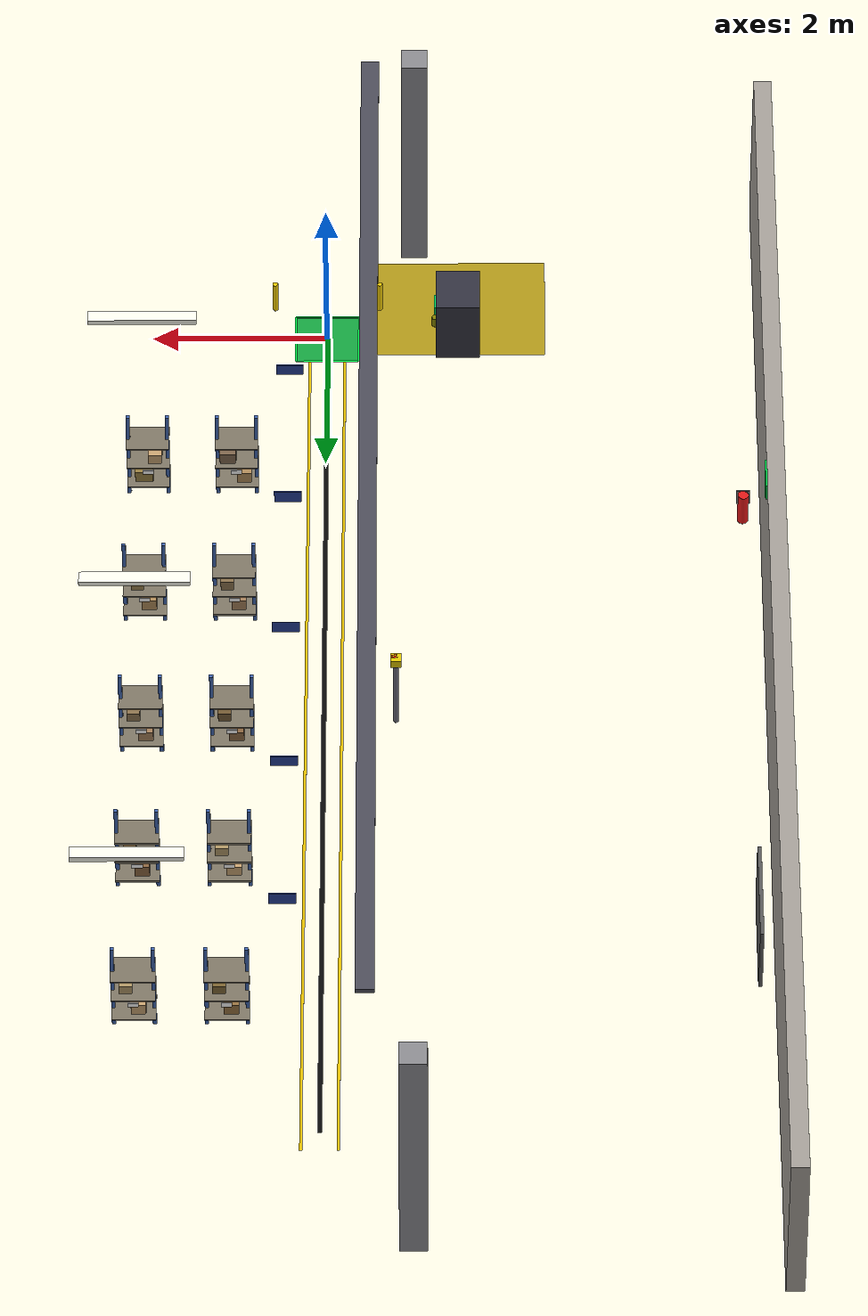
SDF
<sdf version="1.6">
 <world name="atlas_warehouse">
  <model name="lane_spine_L">
   <static>true</static>
   <pose>-0.2 6 0.001 0 0 0</pose>
   <link name="link">
    <visual name="v">
     <geometry><box><size>0.03 12.5 0.001</size></box></geometry>
     <material><ambient>0.85 0.7 0.0 1</ambient><diffuse>0.9 0.75 0.0 1</diffuse></material>
    </visual>
   </link>
  </model>
  <model name="lane_spine_R">
   <static>true</static>
   <pose>0.2 6 0.001 0 0 0</pose>
   <link name="link">
    <visual name="v">
     <geometry><box><size>0.03 12.5 0.001</size></box></geometry>
     <material><ambient>0.85 0.7 0.0 1</ambient><diffuse>0.9 0.75 0.0 1</diffuse></material>
    </visual>
   </link>
  </model>
  <model name="loading_zone">
   <static>true</static>
   <pose>-1.5 -0.5 0.001 0 0 0</pose>
   <link name="link">
    <visual name="v">
     <geometry><box><size>2.0 1.5 0.001</size></box></geometry>
     <material><ambient>0.6 0.55 0.15 1</ambient><diffuse>0.7 0.6 0.1 1</diffuse></material>
    </visual>
   </link>
  </model>
  <model name="spine_line">
   <static>true</static>
   <pose>0 6 0.001 0 0 0</pose>
   <link name="link">
    <collision name="c"><geometry><box><size>0.05 12 0.002</size></box></geometry></collision>
    <visual name="v">
     <geometry><box><size>0.05 12 0.002</size></box></geometry>
     <material><ambient>0.02 0.02 0.02 1</ambient><diffuse>0.03 0.03 0.03 1</diffuse></material>
    </visual>
   </link>
  </model>
  <model name="home_dock">
   <static>true</static>
   <pose>0 0 0.001 0 0 0</pose>
   <link name="link">
    <collision name="c"><geometry><box><size>0.7 0.7 0.002</size></box></geometry></collision>
    <visual name="v">
     <geometry><box><size>0.7 0.7 0.002</size></box></geometry>
     <material><ambient>0.05 0.55 0.2 1</ambient><diffuse>0.08 0.65 0.25 1</diffuse></material>
    </visual>
   </link>
  </model>
  <model name="dock_border_n">
   <static>true</static>
   <pose>0 0.36 0.003 0 0 0</pose>
   <link name="link">
    <visual name="v">
     <geometry><box><size>0.72 0.02 0.004</size></box></geometry>
     <material><ambient>0.0 1.0 0.3 1</ambient><diffuse>0.0 1.0 0.3 1</diffuse></material>
    </visual>
   </link>
  </model>
  <model name="dock_border_s">
   <static>true</static>
   <pose>0 -0.36 0.003 0 0 0</pose>
   <link name="link">
    <visual name="v">
     <geometry><box><size>0.72 0.02 0.004</size></box></geometry>
     <material><ambient>0.0 1.0 0.3 1</ambient><diffuse>0.0 1.0 0.3 1</diffuse></material>
    </visual>
   </link>
  </model>
  <model name="dock_border_e">
   <static>true</static>
   <pose>0.36 0 0.003 0 0 0</pose>
   <link name="link">
    <visual name="v">
     <geometry><box><size>0.02 0.72 0.004</size></box></geometry>
     <material><ambient>0.0 1.0 0.3 1</ambient><diffuse>0.0 1.0 0.3 1</diffuse></material>
    </visual>
   </link>
  </model>
  <model name="dock_border_w">
   <static>true</static>
   <pose>-0.36 0 0.003 0 0 0</pose>
   <link name="link">
    <visual name="v">
     <geometry><box><size>0.02 0.72 0.004</size></box></geometry>
     <material><ambient>0.0 1.0 0.3 1</ambient><diffuse>0.0 1.0 0.3 1</diffuse></material>
    </visual>
   </link>
  </model>
  <model name="charger_cabinet">
   <static>true</static>
   <pose>-1.5 0 0.4 0 0 0</pose>
   <link name="link">
    <collision name="c"><geometry><box><size>0.5 0.6 0.8</size></box></geometry></collision>
    <visual name="v">
     <geometry><box><size>0.5 0.6 0.8</size></box></geometry>
     <material>
      <ambient>0.15 0.15 0.2 1</ambient>
      <diffuse>0.2 0.2 0.25 1</diffuse>
      <specular>0.3 0.3 0.3 1</specular>
     </material>
    </visual>
   </link>
  </model>
  <model name="charger_display">
   <static>true</static>
   <pose>-1.24 0 0.55 0 0 0</pose>
   <link name="link">
    <visual name="v">
     <geometry><box><size>0.02 0.2 0.12</size></box></geometry>
     <material>
      <ambient>0.0 0.8 0.3 1</ambient>
      <diffuse>0.0 0.9 0.4 1</diffuse>
      <emissive>0.0 0.5 0.2 1</emissive>
     </material>
    </visual>
   </link>
  </model>
  <model name="charger_connector">
   <static>true</static>
   <pose>-1.24 0 0.3 0 0 0</pose>
   <link name="link">
    <visual name="v">
     <geometry><cylinder><radius>0.04</radius><length>0.12</length></cylinder></geometry>
     <material><ambient>0.4 0.4 0.0 1</ambient><diffuse>0.5 0.5 0.0 1</diffuse></material>
    </visual>
   </link>
  </model>
  <model name="wall_west">
   <static>true</static>
   <pose>-5 6 1.0 0 0 0</pose>
   <link name="link">
    <collision name="c"><geometry><box><size>0.2 16.4 2.0</size></box></geometry></collision>
    <visual name="v">
     <geometry><box><size>0.2 16.4 2.0</size></box></geometry>
     <material><ambient>0.6 0.58 0.55 1</ambient><diffuse>0.65 0.63 0.6 1</diffuse></material>
    </visual>
   </link>
  </model>
  <model name="col_1">
   <static>true</static>
   <pose>-1 -1.5 1.5 0 0 0</pose>
   <link name="link">
    <collision name="c"><geometry><box><size>0.3 0.3 3.0</size></box></geometry></collision>
    <visual name="v">
     <geometry><box><size>0.3 0.3 3.0</size></box></geometry>
     <material><ambient>0.5 0.5 0.52 1</ambient><diffuse>0.55 0.55 0.57 1</diffuse></material>
    </visual>
   </link>
  </model>
  <model name="col_3">
   <static>true</static>
   <pose>-1 13.5 1.5 0 0 0</pose>
   <link name="link">
    <collision name="c"><geometry><box><size>0.3 0.3 3.0</size></box></geometry></collision>
    <visual name="v">
     <geometry><box><size>0.3 0.3 3.0</size></box></geometry>
     <material><ambient>0.5 0.5 0.52 1</ambient><diffuse>0.55 0.55 0.57 1</diffuse></material>
    </visual>
   </link>
  </model>
  <model name="light_fix_1">
   <static>true</static>
   <pose>2 3 3.3 0 0 0</pose>
   <link name="link">
    <visual name="v">
     <geometry><box><size>1.2 0.15 0.06</size></box></geometry>
     <material>
      <ambient>0.9 0.9 0.85 1</ambient>
      <diffuse>1.0 1.0 0.95 1</diffuse>
      <emissive>0.8 0.8 0.7 1</emissive>
     </material>
    </visual>
   </link>
  </model>
  <model name="light_fix_2">
   <static>true</static>
   <pose>2 7 3.3 0 0 0</pose>
   <link name="link">
    <visual name="v">
     <geometry><box><size>1.2 0.15 0.06</size></box></geometry>
     <material>
      <ambient>0.9 0.9 0.85 1</ambient>
      <diffuse>1.0 1.0 0.95 1</diffuse>
      <emissive>0.8 0.8 0.7 1</emissive>
     </material>
    </visual>
   </link>
  </model>
  <model name="light_fix_3">
   <static>true</static>
   <pose>2 11 3.3 0 0 0</pose>
   <link name="link">
    <visual name="v">
     <geometry><box><size>1.2 0.15 0.06</size></box></geometry>
     <material>
      <ambient>0.9 0.9 0.85 1</ambient>
      <diffuse>1.0 1.0 0.95 1</diffuse>
      <emissive>0.8 0.8 0.7 1</emissive>
     </material>
    </visual>
   </link>
  </model>
  <model name="cable_tray">
   <static>true</static>
   <pose>-0.5 6 3.4 0 0 0</pose>
   <link name="link">
    <visual name="v">
     <geometry><box><size>0.2 14 0.05</size></box></geometry>
     <material><ambient>0.25 0.25 0.3 1</ambient><diffuse>0.3 0.3 0.35 1</diffuse></material>
    </visual>
   </link>
  </model>
  <model name="rack_A1_S01">
   <static>true</static>
   <pose>1.0 2.45 0.0 0 0 0</pose>
   <link name="link">
    <visual name="uL">
     <pose>-0.22 0 0.6 0 0 0</pose>
     <geometry><box><size>0.04 0.04 1.2</size></box></geometry>
     <material>
      <ambient>0.2 0.35 0.6 1</ambient>
      <diffuse>0.25 0.4 0.7 1</diffuse>
      <specular>0.3 0.3 0.3 1</specular>
     </material>
    </visual>
    <visual name="uR">
     <pose>0.22 0 0.6 0 0 0</pose>
     <geometry><box><size>0.04 0.04 1.2</size></box></geometry>
     <material>
      <ambient>0.2 0.35 0.6 1</ambient>
      <diffuse>0.25 0.4 0.7 1</diffuse>
      <specular>0.3 0.3 0.3 1</specular>
     </material>
    </visual>
    <visual name="s1">
     <pose>0 0 0.25 0 0 0</pose>
     <geometry><box><size>0.48 0.35 0.02</size></box></geometry>
     <material><ambient>0.45 0.42 0.35 1</ambient><diffuse>0.5 0.47 0.4 1</diffuse></material>
    </visual>
    <visual name="s2">
     <pose>0 0 0.55 0 0 0</pose>
     <geometry><box><size>0.48 0.35 0.02</size></box></geometry>
     <material><ambient>0.45 0.42 0.35 1</ambient><diffuse>0.5 0.47 0.4 1</diffuse></material>
    </visual>
    <visual name="s3">
     <pose>0 0 0.85 0 0 0</pose>
     <geometry><box><size>0.48 0.35 0.02</size></box></geometry>
     <material><ambient>0.45 0.42 0.35 1</ambient><diffuse>0.5 0.47 0.4 1</diffuse></material>
    </visual>
    <visual name="b1">
     <pose>-0.08 0 0.33 0 0 0</pose>
     <geometry><box><size>0.16 0.22 0.14</size></box></geometry>
     <material><ambient>0.6 0.5 0.3 1</ambient><diffuse>0.7 0.55 0.35 1</diffuse></material>
    </visual>
    <visual name="b2">
     <pose>0.1 0 0.63 0 0 0</pose>
     <geometry><box><size>0.18 0.2 0.14</size></box></geometry>
     <material><ambient>0.4 0.35 0.25 1</ambient><diffuse>0.5 0.4 0.3 1</diffuse></material>
    </visual>
    <visual name="lbl">
     <pose>0 0.18 0.5 0 0 0</pose>
     <geometry><box><size>0.12 0.005 0.06</size></box></geometry>
     <material><ambient>0.95 0.95 0.95 1</ambient><diffuse>1.0 1.0 1.0 1</diffuse></material>
    </visual>
    <collision name="c">
     <pose>0 0 0.6 0 0 0</pose>
     <geometry><box><size>0.5 0.36 1.2</size></box></geometry>
    </collision>
   </link>
  </model>
  <model name="rack_A1_S02">
   <static>true</static>
   <pose>2.0 2.45 0.0 0 0 0</pose>
   <link name="link">
    <visual name="uL">
     <pose>-0.22 0 0.6 0 0 0</pose>
     <geometry><box><size>0.04 0.04 1.2</size></box></geometry>
     <material>
      <ambient>0.2 0.35 0.6 1</ambient>
      <diffuse>0.25 0.4 0.7 1</diffuse>
      <specular>0.3 0.3 0.3 1</specular>
     </material>
    </visual>
    <visual name="uR">
     <pose>0.22 0 0.6 0 0 0</pose>
     <geometry><box><size>0.04 0.04 1.2</size></box></geometry>
     <material>
      <ambient>0.2 0.35 0.6 1</ambient>
      <diffuse>0.25 0.4 0.7 1</diffuse>
      <specular>0.3 0.3 0.3 1</specular>
     </material>
    </visual>
    <visual name="s1">
     <pose>0 0 0.25 0 0 0</pose>
     <geometry><box><size>0.48 0.35 0.02</size></box></geometry>
     <material><ambient>0.45 0.42 0.35 1</ambient><diffuse>0.5 0.47 0.4 1</diffuse></material>
    </visual>
    <visual name="s2">
     <pose>0 0 0.55 0 0 0</pose>
     <geometry><box><size>0.48 0.35 0.02</size></box></geometry>
     <material><ambient>0.45 0.42 0.35 1</ambient><diffuse>0.5 0.47 0.4 1</diffuse></material>
    </visual>
    <visual name="s3">
     <pose>0 0 0.85 0 0 0</pose>
     <geometry><box><size>0.48 0.35 0.02</size></box></geometry>
     <material><ambient>0.45 0.42 0.35 1</ambient><diffuse>0.5 0.47 0.4 1</diffuse></material>
    </visual>
    <visual name="b1">
     <pose>0.05 0 0.33 0 0 0</pose>
     <geometry><box><size>0.2 0.18 0.14</size></box></geometry>
     <material><ambient>0.5 0.4 0.2 1</ambient><diffuse>0.6 0.5 0.25 1</diffuse></material>
    </visual>
    <visual name="b2">
     <pose>-0.08 0 0.63 0 0 0</pose>
     <geometry><box><size>0.15 0.22 0.12</size></box></geometry>
     <material><ambient>0.7 0.6 0.4 1</ambient><diffuse>0.8 0.65 0.45 1</diffuse></material>
    </visual>
    <visual name="lbl">
     <pose>0 0.18 0.5 0 0 0</pose>
     <geometry><box><size>0.12 0.005 0.06</size></box></geometry>
     <material><ambient>0.95 0.95 0.95 1</ambient><diffuse>1.0 1.0 1.0 1</diffuse></material>
    </visual>
    <collision name="c">
     <pose>0 0 0.6 0 0 0</pose>
     <geometry><box><size>0.5 0.36 1.2</size></box></geometry>
    </collision>
   </link>
  </model>
  <model name="rack_A2_S05">
   <static>true</static>
   <pose>1.0 4.45 0.0 0 0 0</pose>
   <link name="link">
    <visual name="uL">
     <pose>-0.22 0 0.6 0 0 0</pose>
     <geometry><box><size>0.04 0.04 1.2</size></box></geometry>
     <material>
      <ambient>0.2 0.35 0.6 1</ambient>
      <diffuse>0.25 0.4 0.7 1</diffuse>
      <specular>0.3 0.3 0.3 1</specular>
     </material>
    </visual>
    <visual name="uR">
     <pose>0.22 0 0.6 0 0 0</pose>
     <geometry><box><size>0.04 0.04 1.2</size></box></geometry>
     <material>
      <ambient>0.2 0.35 0.6 1</ambient>
      <diffuse>0.25 0.4 0.7 1</diffuse>
      <specular>0.3 0.3 0.3 1</specular>
     </material>
    </visual>
    <visual name="s1">
     <pose>0 0 0.25 0 0 0</pose>
     <geometry><box><size>0.48 0.35 0.02</size></box></geometry>
     <material><ambient>0.45 0.42 0.35 1</ambient><diffuse>0.5 0.47 0.4 1</diffuse></material>
    </visual>
    <visual name="s2">
     <pose>0 0 0.55 0 0 0</pose>
     <geometry><box><size>0.48 0.35 0.02</size></box></geometry>
     <material><ambient>0.45 0.42 0.35 1</ambient><diffuse>0.5 0.47 0.4 1</diffuse></material>
    </visual>
    <visual name="s3">
     <pose>0 0 0.85 0 0 0</pose>
     <geometry><box><size>0.48 0.35 0.02</size></box></geometry>
     <material><ambient>0.45 0.42 0.35 1</ambient><diffuse>0.5 0.47 0.4 1</diffuse></material>
    </visual>
    <visual name="b1">
     <pose>-0.05 0 0.33 0 0 0</pose>
     <geometry><box><size>0.16 0.2 0.14</size></box></geometry>
     <material><ambient>0.55 0.45 0.3 1</ambient><diffuse>0.65 0.5 0.35 1</diffuse></material>
    </visual>
    <visual name="b2">
     <pose>0.08 0 0.63 0 0 0</pose>
     <geometry><box><size>0.14 0.18 0.12</size></box></geometry>
     <material><ambient>0.45000000000000007 0.4 0.25 1</ambient><diffuse>0.55 0.45 0.3 1</diffuse></material>
    </visual>
    <visual name="lbl">
     <pose>0 0.18 0.5 0 0 0</pose>
     <geometry><box><size>0.12 0.005 0.06</size></box></geometry>
     <material><ambient>0.95 0.95 0.95 1</ambient><diffuse>1.0 1.0 1.0 1</diffuse></material>
    </visual>
    <collision name="c">
     <pose>0 0 0.6 0 0 0</pose>
     <geometry><box><size>0.5 0.36 1.2</size></box></geometry>
    </collision>
   </link>
  </model>
  <model name="rack_A2_S06">
   <static>true</static>
   <pose>2.0 4.45 0.0 0 0 0</pose>
   <link name="link">
    <visual name="uL">
     <pose>-0.22 0 0.6 0 0 0</pose>
     <geometry><box><size>0.04 0.04 1.2</size></box></geometry>
     <material>
      <ambient>0.2 0.35 0.6 1</ambient>
      <diffuse>0.25 0.4 0.7 1</diffuse>
      <specular>0.3 0.3 0.3 1</specular>
     </material>
    </visual>
    <visual name="uR">
     <pose>0.22 0 0.6 0 0 0</pose>
     <geometry><box><size>0.04 0.04 1.2</size></box></geometry>
     <material>
      <ambient>0.2 0.35 0.6 1</ambient>
      <diffuse>0.25 0.4 0.7 1</diffuse>
      <specular>0.3 0.3 0.3 1</specular>
     </material>
    </visual>
    <visual name="s1">
     <pose>0 0 0.25 0 0 0</pose>
     <geometry><box><size>0.48 0.35 0.02</size></box></geometry>
     <material><ambient>0.45 0.42 0.35 1</ambient><diffuse>0.5 0.47 0.4 1</diffuse></material>
    </visual>
    <visual name="s2">
     <pose>0 0 0.55 0 0 0</pose>
     <geometry><box><size>0.48 0.35 0.02</size></box></geometry>
     <material><ambient>0.45 0.42 0.35 1</ambient><diffuse>0.5 0.47 0.4 1</diffuse></material>
    </visual>
    <visual name="s3">
     <pose>0 0 0.85 0 0 0</pose>
     <geometry><box><size>0.48 0.35 0.02</size></box></geometry>
     <material><ambient>0.45 0.42 0.35 1</ambient><diffuse>0.5 0.47 0.4 1</diffuse></material>
    </visual>
    <visual name="b1">
     <pose>-0.05 0 0.33 0 0 0</pose>
     <geometry><box><size>0.16 0.2 0.14</size></box></geometry>
     <material><ambient>0.6 0.5 0.3 1</ambient><diffuse>0.7 0.55 0.35 1</diffuse></material>
    </visual>
    <visual name="b2">
     <pose>0.08 0 0.63 0 0 0</pose>
     <geometry><box><size>0.14 0.18 0.12</size></box></geometry>
     <material><ambient>0.5 0.45 0.25 1</ambient><diffuse>0.6 0.5 0.3 1</diffuse></material>
    </visual>
    <visual name="lbl">
     <pose>0 0.18 0.5 0 0 0</pose>
     <geometry><box><size>0.12 0.005 0.06</size></box></geometry>
     <material><ambient>0.95 0.95 0.95 1</ambient><diffuse>1.0 1.0 1.0 1</diffuse></material>
    </visual>
    <collision name="c">
     <pose>0 0 0.6 0 0 0</pose>
     <geometry><box><size>0.5 0.36 1.2</size></box></geometry>
    </collision>
   </link>
  </model>
  <model name="rack_A3_S09">
   <static>true</static>
   <pose>1.0 6.45 0.0 0 0 0</pose>
   <link name="link">
    <visual name="uL">
     <pose>-0.22 0 0.6 0 0 0</pose>
     <geometry><box><size>0.04 0.04 1.2</size></box></geometry>
     <material>
      <ambient>0.2 0.35 0.6 1</ambient>
      <diffuse>0.25 0.4 0.7 1</diffuse>
      <specular>0.3 0.3 0.3 1</specular>
     </material>
    </visual>
    <visual name="uR">
     <pose>0.22 0 0.6 0 0 0</pose>
     <geometry><box><size>0.04 0.04 1.2</size></box></geometry>
     <material>
      <ambient>0.2 0.35 0.6 1</ambient>
      <diffuse>0.25 0.4 0.7 1</diffuse>
      <specular>0.3 0.3 0.3 1</specular>
     </material>
    </visual>
    <visual name="s1">
     <pose>0 0 0.25 0 0 0</pose>
     <geometry><box><size>0.48 0.35 0.02</size></box></geometry>
     <material><ambient>0.45 0.42 0.35 1</ambient><diffuse>0.5 0.47 0.4 1</diffuse></material>
    </visual>
    <visual name="s2">
     <pose>0 0 0.55 0 0 0</pose>
     <geometry><box><size>0.48 0.35 0.02</size></box></geometry>
     <material><ambient>0.45 0.42 0.35 1</ambient><diffuse>0.5 0.47 0.4 1</diffuse></material>
    </visual>
    <visual name="s3">
     <pose>0 0 0.85 0 0 0</pose>
     <geometry><box><size>0.48 0.35 0.02</size></box></geometry>
     <material><ambient>0.45 0.42 0.35 1</ambient><diffuse>0.5 0.47 0.4 1</diffuse></material>
    </visual>
    <visual name="b1">
     <pose>-0.05 0 0.33 0 0 0</pose>
     <geometry><box><size>0.16 0.2 0.14</size></box></geometry>
     <material><ambient>0.45 0.35 0.2 1</ambient><diffuse>0.55 0.39999999999999997 0.25 1</diffuse></material>
    </visual>
    <visual name="b2">
     <pose>0.08 0 0.63 0 0 0</pose>
     <geometry><box><size>0.14 0.18 0.12</size></box></geometry>
     <material><ambient>0.35 0.3 0.15000000000000002 1</ambient><diffuse>0.45 0.35 0.2 1</diffuse></material>
    </visual>
    <visual name="lbl">
     <pose>0 0.18 0.5 0 0 0</pose>
     <geometry><box><size>0.12 0.005 0.06</size></box></geometry>
     <material><ambient>0.95 0.95 0.95 1</ambient><diffuse>1.0 1.0 1.0 1</diffuse></material>
    </visual>
    <collision name="c">
     <pose>0 0 0.6 0 0 0</pose>
     <geometry><box><size>0.5 0.36 1.2</size></box></geometry>
    </collision>
   </link>
  </model>
  <model name="rack_A3_S10">
   <static>true</static>
   <pose>2.0 6.45 0.0 0 0 0</pose>
   <link name="link">
    <visual name="uL">
     <pose>-0.22 0 0.6 0 0 0</pose>
     <geometry><box><size>0.04 0.04 1.2</size></box></geometry>
     <material>
      <ambient>0.2 0.35 0.6 1</ambient>
      <diffuse>0.25 0.4 0.7 1</diffuse>
      <specular>0.3 0.3 0.3 1</specular>
     </material>
    </visual>
    <visual name="uR">
     <pose>0.22 0 0.6 0 0 0</pose>
     <geometry><box><size>0.04 0.04 1.2</size></box></geometry>
     <material>
      <ambient>0.2 0.35 0.6 1</ambient>
      <diffuse>0.25 0.4 0.7 1</diffuse>
      <specular>0.3 0.3 0.3 1</specular>
     </material>
    </visual>
    <visual name="s1">
     <pose>0 0 0.25 0 0 0</pose>
     <geometry><box><size>0.48 0.35 0.02</size></box></geometry>
     <material><ambient>0.45 0.42 0.35 1</ambient><diffuse>0.5 0.47 0.4 1</diffuse></material>
    </visual>
    <visual name="s2">
     <pose>0 0 0.55 0 0 0</pose>
     <geometry><box><size>0.48 0.35 0.02</size></box></geometry>
     <material><ambient>0.45 0.42 0.35 1</ambient><diffuse>0.5 0.47 0.4 1</diffuse></material>
    </visual>
    <visual name="s3">
     <pose>0 0 0.85 0 0 0</pose>
     <geometry><box><size>0.48 0.35 0.02</size></box></geometry>
     <material><ambient>0.45 0.42 0.35 1</ambient><diffuse>0.5 0.47 0.4 1</diffuse></material>
    </visual>
    <visual name="b1">
     <pose>-0.05 0 0.33 0 0 0</pose>
     <geometry><box><size>0.16 0.2 0.14</size></box></geometry>
     <material><ambient>0.55 0.45 0.3 1</ambient><diffuse>0.65 0.5 0.35 1</diffuse></material>
    </visual>
    <visual name="b2">
     <pose>0.08 0 0.63 0 0 0</pose>
     <geometry><box><size>0.14 0.18 0.12</size></box></geometry>
     <material><ambient>0.45000000000000007 0.4 0.25 1</ambient><diffuse>0.55 0.45 0.3 1</diffuse></material>
    </visual>
    <visual name="lbl">
     <pose>0 0.18 0.5 0 0 0</pose>
     <geometry><box><size>0.12 0.005 0.06</size></box></geometry>
     <material><ambient>0.95 0.95 0.95 1</ambient><diffuse>1.0 1.0 1.0 1</diffuse></material>
    </visual>
    <collision name="c">
     <pose>0 0 0.6 0 0 0</pose>
     <geometry><box><size>0.5 0.36 1.2</size></box></geometry>
    </collision>
   </link>
  </model>
  <model name="rack_A4_S13">
   <static>true</static>
   <pose>1.0 8.45 0.0 0 0 0</pose>
   <link name="link">
    <visual name="uL">
     <pose>-0.22 0 0.6 0 0 0</pose>
     <geometry><box><size>0.04 0.04 1.2</size></box></geometry>
     <material>
      <ambient>0.2 0.35 0.6 1</ambient>
      <diffuse>0.25 0.4 0.7 1</diffuse>
      <specular>0.3 0.3 0.3 1</specular>
     </material>
    </visual>
    <visual name="uR">
     <pose>0.22 0 0.6 0 0 0</pose>
     <geometry><box><size>0.04 0.04 1.2</size></box></geometry>
     <material>
      <ambient>0.2 0.35 0.6 1</ambient>
      <diffuse>0.25 0.4 0.7 1</diffuse>
      <specular>0.3 0.3 0.3 1</specular>
     </material>
    </visual>
    <visual name="s1">
     <pose>0 0 0.25 0 0 0</pose>
     <geometry><box><size>0.48 0.35 0.02</size></box></geometry>
     <material><ambient>0.45 0.42 0.35 1</ambient><diffuse>0.5 0.47 0.4 1</diffuse></material>
    </visual>
    <visual name="s2">
     <pose>0 0 0.55 0 0 0</pose>
     <geometry><box><size>0.48 0.35 0.02</size></box></geometry>
     <material><ambient>0.45 0.42 0.35 1</ambient><diffuse>0.5 0.47 0.4 1</diffuse></material>
    </visual>
    <visual name="s3">
     <pose>0 0 0.85 0 0 0</pose>
     <geometry><box><size>0.48 0.35 0.02</size></box></geometry>
     <material><ambient>0.45 0.42 0.35 1</ambient><diffuse>0.5 0.47 0.4 1</diffuse></material>
    </visual>
    <visual name="b1">
     <pose>-0.05 0 0.33 0 0 0</pose>
     <geometry><box><size>0.16 0.2 0.14</size></box></geometry>
     <material><ambient>0.7 0.6 0.4 1</ambient><diffuse>0.7999999999999999 0.65 0.45 1</diffuse></material>
    </visual>
    <visual name="b2">
     <pose>0.08 0 0.63 0 0 0</pose>
     <geometry><box><size>0.14 0.18 0.12</size></box></geometry>
     <material>
      <ambient>0.6 0.5499999999999999 0.35000000000000003 1</ambient>
      <diffuse>0.7 0.6 0.4 1</diffuse>
     </material>
    </visual>
    <visual name="lbl">
     <pose>0 0.18 0.5 0 0 0</pose>
     <geometry><box><size>0.12 0.005 0.06</size></box></geometry>
     <material><ambient>0.95 0.95 0.95 1</ambient><diffuse>1.0 1.0 1.0 1</diffuse></material>
    </visual>
    <collision name="c">
     <pose>0 0 0.6 0 0 0</pose>
     <geometry><box><size>0.5 0.36 1.2</size></box></geometry>
    </collision>
   </link>
  </model>
  <model name="rack_A4_S14">
   <static>true</static>
   <pose>2.0 8.45 0.0 0 0 0</pose>
   <link name="link">
    <visual name="uL">
     <pose>-0.22 0 0.6 0 0 0</pose>
     <geometry><box><size>0.04 0.04 1.2</size></box></geometry>
     <material>
      <ambient>0.2 0.35 0.6 1</ambient>
      <diffuse>0.25 0.4 0.7 1</diffuse>
      <specular>0.3 0.3 0.3 1</specular>
     </material>
    </visual>
    <visual name="uR">
     <pose>0.22 0 0.6 0 0 0</pose>
     <geometry><box><size>0.04 0.04 1.2</size></box></geometry>
     <material>
      <ambient>0.2 0.35 0.6 1</ambient>
      <diffuse>0.25 0.4 0.7 1</diffuse>
      <specular>0.3 0.3 0.3 1</specular>
     </material>
    </visual>
    <visual name="s1">
     <pose>0 0 0.25 0 0 0</pose>
     <geometry><box><size>0.48 0.35 0.02</size></box></geometry>
     <material><ambient>0.45 0.42 0.35 1</ambient><diffuse>0.5 0.47 0.4 1</diffuse></material>
    </visual>
    <visual name="s2">
     <pose>0 0 0.55 0 0 0</pose>
     <geometry><box><size>0.48 0.35 0.02</size></box></geometry>
     <material><ambient>0.45 0.42 0.35 1</ambient><diffuse>0.5 0.47 0.4 1</diffuse></material>
    </visual>
    <visual name="s3">
     <pose>0 0 0.85 0 0 0</pose>
     <geometry><box><size>0.48 0.35 0.02</size></box></geometry>
     <material><ambient>0.45 0.42 0.35 1</ambient><diffuse>0.5 0.47 0.4 1</diffuse></material>
    </visual>
    <visual name="b1">
     <pose>-0.05 0 0.33 0 0 0</pose>
     <geometry><box><size>0.16 0.2 0.14</size></box></geometry>
     <material><ambient>0.45 0.35 0.2 1</ambient><diffuse>0.55 0.39999999999999997 0.25 1</diffuse></material>
    </visual>
    <visual name="b2">
     <pose>0.08 0 0.63 0 0 0</pose>
     <geometry><box><size>0.14 0.18 0.12</size></box></geometry>
     <material><ambient>0.35 0.3 0.15000000000000002 1</ambient><diffuse>0.45 0.35 0.2 1</diffuse></material>
    </visual>
    <visual name="lbl">
     <pose>0 0.18 0.5 0 0 0</pose>
     <geometry><box><size>0.12 0.005 0.06</size></box></geometry>
     <material><ambient>0.95 0.95 0.95 1</ambient><diffuse>1.0 1.0 1.0 1</diffuse></material>
    </visual>
    <collision name="c">
     <pose>0 0 0.6 0 0 0</pose>
     <geometry><box><size>0.5 0.36 1.2</size></box></geometry>
    </collision>
   </link>
  </model>
  <model name="rack_A5_S17">
   <static>true</static>
   <pose>1.0 10.45 0.0 0 0 0</pose>
   <link name="link">
    <visual name="uL">
     <pose>-0.22 0 0.6 0 0 0</pose>
     <geometry><box><size>0.04 0.04 1.2</size></box></geometry>
     <material>
      <ambient>0.2 0.35 0.6 1</ambient>
      <diffuse>0.25 0.4 0.7 1</diffuse>
      <specular>0.3 0.3 0.3 1</specular>
     </material>
    </visual>
    <visual name="uR">
     <pose>0.22 0 0.6 0 0 0</pose>
     <geometry><box><size>0.04 0.04 1.2</size></box></geometry>
     <material>
      <ambient>0.2 0.35 0.6 1</ambient>
      <diffuse>0.25 0.4 0.7 1</diffuse>
      <specular>0.3 0.3 0.3 1</specular>
     </material>
    </visual>
    <visual name="s1">
     <pose>0 0 0.25 0 0 0</pose>
     <geometry><box><size>0.48 0.35 0.02</size></box></geometry>
     <material><ambient>0.45 0.42 0.35 1</ambient><diffuse>0.5 0.47 0.4 1</diffuse></material>
    </visual>
    <visual name="s2">
     <pose>0 0 0.55 0 0 0</pose>
     <geometry><box><size>0.48 0.35 0.02</size></box></geometry>
     <material><ambient>0.45 0.42 0.35 1</ambient><diffuse>0.5 0.47 0.4 1</diffuse></material>
    </visual>
    <visual name="s3">
     <pose>0 0 0.85 0 0 0</pose>
     <geometry><box><size>0.48 0.35 0.02</size></box></geometry>
     <material><ambient>0.45 0.42 0.35 1</ambient><diffuse>0.5 0.47 0.4 1</diffuse></material>
    </visual>
    <visual name="b1">
     <pose>-0.05 0 0.33 0 0 0</pose>
     <geometry><box><size>0.16 0.2 0.14</size></box></geometry>
     <material><ambient>0.5 0.4 0.2 1</ambient><diffuse>0.6 0.45 0.25 1</diffuse></material>
    </visual>
    <visual name="b2">
     <pose>0.08 0 0.63 0 0 0</pose>
     <geometry><box><size>0.14 0.18 0.12</size></box></geometry>
     <material>
      <ambient>0.4 0.35000000000000003 0.15000000000000002 1</ambient>
      <diffuse>0.5 0.4 0.2 1</diffuse>
     </material>
    </visual>
    <visual name="lbl">
     <pose>0 0.18 0.5 0 0 0</pose>
     <geometry><box><size>0.12 0.005 0.06</size></box></geometry>
     <material><ambient>0.95 0.95 0.95 1</ambient><diffuse>1.0 1.0 1.0 1</diffuse></material>
    </visual>
    <collision name="c">
     <pose>0 0 0.6 0 0 0</pose>
     <geometry><box><size>0.5 0.36 1.2</size></box></geometry>
    </collision>
   </link>
  </model>
  <model name="rack_A5_S18">
   <static>true</static>
   <pose>2.0 10.45 0.0 0 0 0</pose>
   <link name="link">
    <visual name="uL">
     <pose>-0.22 0 0.6 0 0 0</pose>
     <geometry><box><size>0.04 0.04 1.2</size></box></geometry>
     <material>
      <ambient>0.2 0.35 0.6 1</ambient>
      <diffuse>0.25 0.4 0.7 1</diffuse>
      <specular>0.3 0.3 0.3 1</specular>
     </material>
    </visual>
    <visual name="uR">
     <pose>0.22 0 0.6 0 0 0</pose>
     <geometry><box><size>0.04 0.04 1.2</size></box></geometry>
     <material>
      <ambient>0.2 0.35 0.6 1</ambient>
      <diffuse>0.25 0.4 0.7 1</diffuse>
      <specular>0.3 0.3 0.3 1</specular>
     </material>
    </visual>
    <visual name="s1">
     <pose>0 0 0.25 0 0 0</pose>
     <geometry><box><size>0.48 0.35 0.02</size></box></geometry>
     <material><ambient>0.45 0.42 0.35 1</ambient><diffuse>0.5 0.47 0.4 1</diffuse></material>
    </visual>
    <visual name="s2">
     <pose>0 0 0.55 0 0 0</pose>
     <geometry><box><size>0.48 0.35 0.02</size></box></geometry>
     <material><ambient>0.45 0.42 0.35 1</ambient><diffuse>0.5 0.47 0.4 1</diffuse></material>
    </visual>
    <visual name="s3">
     <pose>0 0 0.85 0 0 0</pose>
     <geometry><box><size>0.48 0.35 0.02</size></box></geometry>
     <material><ambient>0.45 0.42 0.35 1</ambient><diffuse>0.5 0.47 0.4 1</diffuse></material>
    </visual>
    <visual name="b1">
     <pose>-0.05 0 0.33 0 0 0</pose>
     <geometry><box><size>0.16 0.2 0.14</size></box></geometry>
     <material><ambient>0.7 0.6 0.4 1</ambient><diffuse>0.7999999999999999 0.65 0.45 1</diffuse></material>
    </visual>
    <visual name="b2">
     <pose>0.08 0 0.63 0 0 0</pose>
     <geometry><box><size>0.14 0.18 0.12</size></box></geometry>
     <material>
      <ambient>0.6 0.5499999999999999 0.35000000000000003 1</ambient>
      <diffuse>0.7 0.6 0.4 1</diffuse>
     </material>
    </visual>
    <visual name="lbl">
     <pose>0 0.18 0.5 0 0 0</pose>
     <geometry><box><size>0.12 0.005 0.06</size></box></geometry>
     <material><ambient>0.95 0.95 0.95 1</ambient><diffuse>1.0 1.0 1.0 1</diffuse></material>
    </visual>
    <collision name="c">
     <pose>0 0 0.6 0 0 0</pose>
     <geometry><box><size>0.5 0.36 1.2</size></box></geometry>
    </collision>
   </link>
  </model>
  <model name="barrier_dock_1">
   <static>true</static>
   <pose>-0.6 -0.5 0.2 0 0 0</pose>
   <link name="link">
    <visual name="post">
     <geometry><cylinder><radius>0.03</radius><length>0.4</length></cylinder></geometry>
     <material><ambient>0.85 0.7 0.0 1</ambient><diffuse>0.95 0.8 0.0 1</diffuse></material>
    </visual>
   </link>
  </model>
  <model name="barrier_dock_2">
   <static>true</static>
   <pose>0.6 -0.5 0.2 0 0 0</pose>
   <link name="link">
    <visual name="post">
     <geometry><cylinder><radius>0.03</radius><length>0.4</length></cylinder></geometry>
     <material><ambient>0.85 0.7 0.0 1</ambient><diffuse>0.95 0.8 0.0 1</diffuse></material>
    </visual>
   </link>
  </model>
  <model name="estop_pillar">
   <static>true</static>
   <pose>-0.8 6 0.0 0 0 0</pose>
   <link name="link">
    <visual name="pole">
     <pose>0 0 0.5 0 0 0</pose>
     <geometry><cylinder><radius>0.03</radius><length>1.0</length></cylinder></geometry>
     <material><ambient>0.3 0.3 0.35 1</ambient><diffuse>0.4 0.4 0.45 1</diffuse></material>
    </visual>
    <visual name="button">
     <pose>0 0 1.0 0 0 0</pose>
     <geometry><cylinder><radius>0.05</radius><length>0.04</length></cylinder></geometry>
     <material>
      <ambient>0.9 0.0 0.0 1</ambient>
      <diffuse>1.0 0.0 0.0 1</diffuse>
      <emissive>0.3 0.0 0.0 1</emissive>
     </material>
    </visual>
    <visual name="housing">
     <pose>0 0 0.97 0 0 0</pose>
     <geometry><box><size>0.12 0.12 0.1</size></box></geometry>
     <material><ambient>0.8 0.7 0.0 1</ambient><diffuse>0.9 0.8 0.0 1</diffuse></material>
    </visual>
   </link>
  </model>
  <model name="sign_aisle1">
   <static>true</static>
   <pose>0.4 2 1.5 0 0 0</pose>
   <link name="link">
    <visual name="v">
     <geometry><box><size>0.3 0.01 0.15</size></box></geometry>
     <material><ambient>0.1 0.2 0.5 1</ambient><diffuse>0.15 0.25 0.6 1</diffuse></material>
    </visual>
   </link>
  </model>
  <model name="sign_aisle2">
   <static>true</static>
   <pose>0.4 4 1.5 0 0 0</pose>
   <link name="link">
    <visual name="v">
     <geometry><box><size>0.3 0.01 0.15</size></box></geometry>
     <material><ambient>0.1 0.2 0.5 1</ambient><diffuse>0.15 0.25 0.6 1</diffuse></material>
    </visual>
   </link>
  </model>
  <model name="sign_aisle3">
   <static>true</static>
   <pose>0.4 6 1.5 0 0 0</pose>
   <link name="link">
    <visual name="v">
     <geometry><box><size>0.3 0.01 0.15</size></box></geometry>
     <material><ambient>0.1 0.2 0.5 1</ambient><diffuse>0.15 0.25 0.6 1</diffuse></material>
    </visual>
   </link>
  </model>
  <model name="sign_aisle4">
   <static>true</static>
   <pose>0.4 8 1.5 0 0 0</pose>
   <link name="link">
    <visual name="v">
     <geometry><box><size>0.3 0.01 0.15</size></box></geometry>
     <material><ambient>0.1 0.2 0.5 1</ambient><diffuse>0.15 0.25 0.6 1</diffuse></material>
    </visual>
   </link>
  </model>
  <model name="sign_aisle5">
   <static>true</static>
   <pose>0.4 10 1.5 0 0 0</pose>
   <link name="link">
    <visual name="v">
     <geometry><box><size>0.3 0.01 0.15</size></box></geometry>
     <material><ambient>0.1 0.2 0.5 1</ambient><diffuse>0.15 0.25 0.6 1</diffuse></material>
    </visual>
   </link>
  </model>
  <model name="exit_sign">
   <static>true</static>
   <pose>-4.8 6 3.8 0 0 1.5708</pose>
   <link name="link">
    <visual name="v">
     <geometry><box><size>0.4 0.02 0.2</size></box></geometry>
     <material>
      <ambient>0.0 0.8 0.2 1</ambient>
      <diffuse>0.0 0.9 0.3 1</diffuse>
      <emissive>0.0 0.4 0.1 1</emissive>
     </material>
    </visual>
   </link>
  </model>
  <model name="fire_ext">
   <static>true</static>
   <pose>-4.7 3 0.0 0 0 0</pose>
   <link name="link">
    <visual name="tank">
     <pose>0 0 0.3 0 0 0</pose>
     <geometry><cylinder><radius>0.06</radius><length>0.4</length></cylinder></geometry>
     <material><ambient>0.8 0.0 0.0 1</ambient><diffuse>0.9 0.1 0.1 1</diffuse></material>
    </visual>
    <visual name="bracket">
     <pose>0 -0.07 0.4 0 0 0</pose>
     <geometry><box><size>0.15 0.02 0.2</size></box></geometry>
     <material><ambient>0.4 0.4 0.4 1</ambient><diffuse>0.5 0.5 0.5 1</diffuse></material>
    </visual>
   </link>
  </model>
  <model name="rfid_pad_01">
   <static>true</static>
   <pose>1.0 2 0.002 0 0 0</pose>
   <link name="link">
    <visual name="v">
     <geometry><box><size>0.15 0.15 0.002</size></box></geometry>
     <material>
      <ambient>0.0 0.2 0.7 1</ambient>
      <diffuse>0.0 0.3 0.9 1</diffuse>
      <emissive>0.0 0.05 0.2 1</emissive>
     </material>
    </visual>
   </link>
  </model>
  <model name="rfid_pad_05">
   <static>true</static>
   <pose>1.0 4 0.002 0 0 0</pose>
   <link name="link">
    <visual name="v">
     <geometry><box><size>0.15 0.15 0.002</size></box></geometry>
     <material>
      <ambient>0.0 0.2 0.7 1</ambient>
      <diffuse>0.0 0.3 0.9 1</diffuse>
      <emissive>0.0 0.05 0.2 1</emissive>
     </material>
    </visual>
   </link>
  </model>
  <model name="rfid_pad_09">
   <static>true</static>
   <pose>1.0 6 0.002 0 0 0</pose>
   <link name="link">
    <visual name="v">
     <geometry><box><size>0.15 0.15 0.002</size></box></geometry>
     <material>
      <ambient>0.0 0.2 0.7 1</ambient>
      <diffuse>0.0 0.3 0.9 1</diffuse>
      <emissive>0.0 0.05 0.2 1</emissive>
     </material>
    </visual>
   </link>
  </model>
  <model name="rfid_pad_13">
   <static>true</static>
   <pose>1.0 8 0.002 0 0 0</pose>
   <link name="link">
    <visual name="v">
     <geometry><box><size>0.15 0.15 0.002</size></box></geometry>
     <material>
      <ambient>0.0 0.2 0.7 1</ambient>
      <diffuse>0.0 0.3 0.9 1</diffuse>
      <emissive>0.0 0.05 0.2 1</emissive>
     </material>
    </visual>
   </link>
  </model>
  <model name="rfid_pad_17">
   <static>true</static>
   <pose>1.0 10 0.002 0 0 0</pose>
   <link name="link">
    <visual name="v">
     <geometry><box><size>0.15 0.15 0.002</size></box></geometry>
     <material>
      <ambient>0.0 0.2 0.7 1</ambient>
      <diffuse>0.0 0.3 0.9 1</diffuse>
      <emissive>0.0 0.05 0.2 1</emissive>
     </material>
    </visual>
   </link>
  </model>
  <model name="info_board">
   <static>true</static>
   <pose>-4.7 10 1.2 0 0 1.5708</pose>
   <link name="link">
    <visual name="board">
     <geometry><box><size>1.2 0.03 0.8</size></box></geometry>
     <material><ambient>0.9 0.9 0.9 1</ambient><diffuse>0.95 0.95 0.95 1</diffuse></material>
    </visual>
    <visual name="frame">
     <geometry><box><size>1.25 0.04 0.85</size></box></geometry>
     <material><ambient>0.3 0.3 0.3 1</ambient><diffuse>0.35 0.35 0.35 1</diffuse></material>
    </visual>
   </link>
  </model>
 </world>
</sdf>
